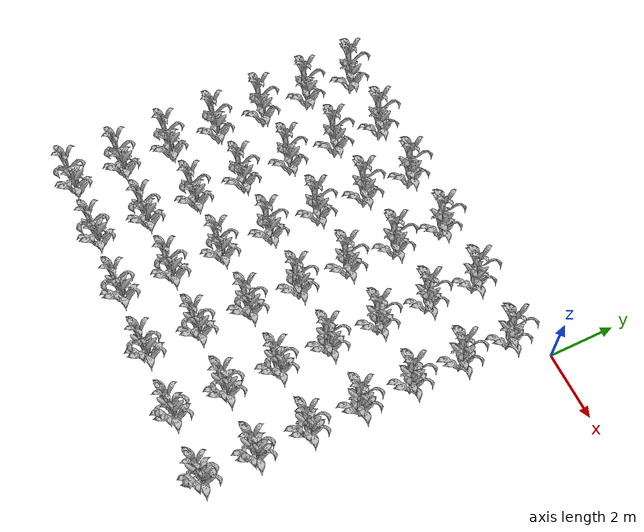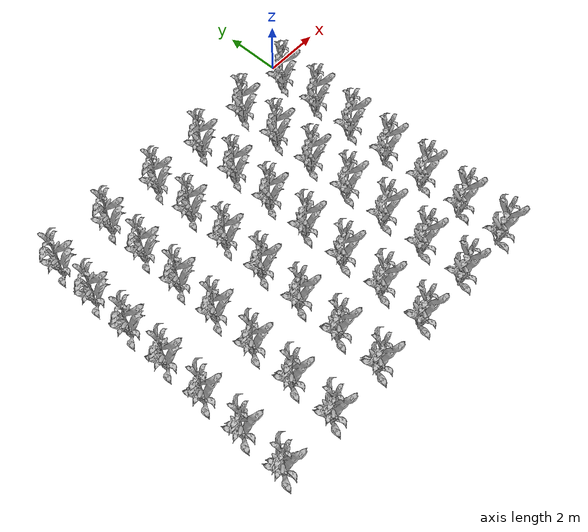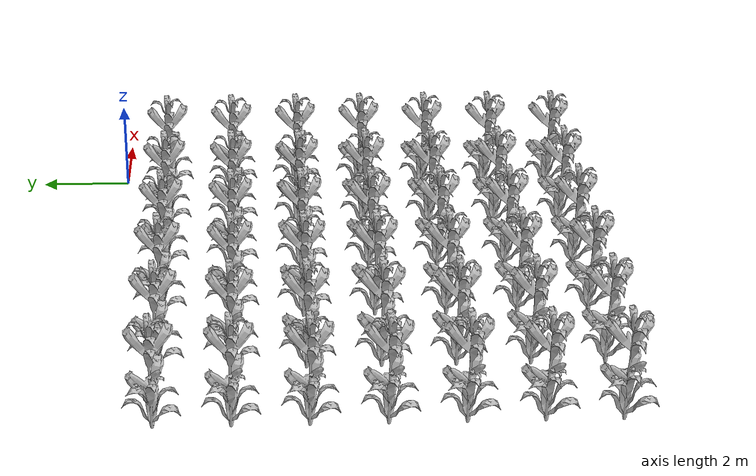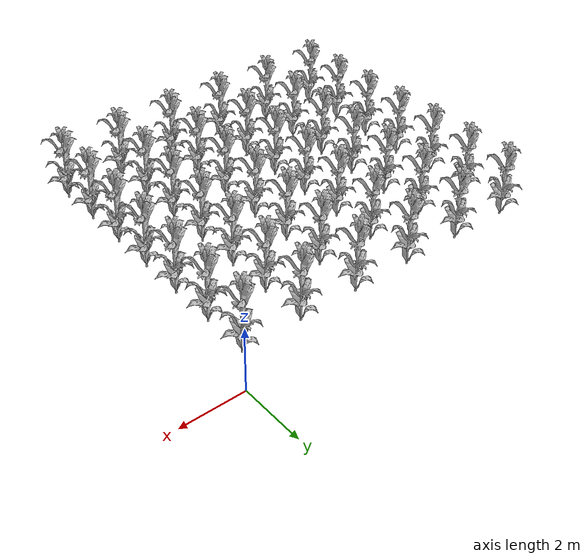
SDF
<sdf version="1.7">
 <world name="default">
  <model name="corn_-10.5_-10.0">
   <static>1</static>
   <link name="link">
    <inertial>
     <mass>0.2</mass>
     <inertia>
      <ixx>0.166667</ixx>
      <ixy>0</ixy>
      <ixz>0</ixz>
      <iyy>0.166667</iyy>
      <iyz>0</iyz>
      <izz>0.166667</izz>
     </inertia>
    </inertial>
    <collision name="collision">
     <geometry><mesh><uri>model://corn_2/meshes/corn.dae</uri><scale>1 1 1</scale></mesh></geometry>
     <surface>
      <friction><ode><mu>0.0</mu><mu2>0.0</mu2></ode></friction>
      <contact><ode><kp>0.0</kp><kd>0.0</kd><max_vel>0.0</max_vel><min_depth>0.002</min_depth></ode></contact>
     </surface>
    </collision>
    <visual name="visual">
     <geometry><mesh><uri>model://corn_2/meshes/corn.dae</uri><scale>1 1 1</scale></mesh></geometry>
    </visual>
    <velocity_decay><linear>0</linear><angular>0</angular></velocity_decay>
   </link>
   <pose>-10.5 -10 0.15 0 -0 0</pose>
  </model>
  <model name="corn_-10.5_-8.5">
   <static>1</static>
   <link name="link">
    <inertial>
     <mass>0.2</mass>
     <inertia>
      <ixx>0.166667</ixx>
      <ixy>0</ixy>
      <ixz>0</ixz>
      <iyy>0.166667</iyy>
      <iyz>0</iyz>
      <izz>0.166667</izz>
     </inertia>
    </inertial>
    <collision name="collision">
     <geometry><mesh><uri>model://corn_2/meshes/corn.dae</uri><scale>1 1 1</scale></mesh></geometry>
     <surface>
      <friction><ode><mu>0.0</mu><mu2>0.0</mu2></ode></friction>
      <contact><ode><kp>0.0</kp><kd>0.0</kd><max_vel>0.0</max_vel><min_depth>0.002</min_depth></ode></contact>
     </surface>
    </collision>
    <visual name="visual">
     <geometry><mesh><uri>model://corn_2/meshes/corn.dae</uri><scale>1 1 1</scale></mesh></geometry>
    </visual>
    <velocity_decay><linear>0</linear><angular>0</angular></velocity_decay>
   </link>
   <pose>-10.5 -8.5 0.15 0 -0 0</pose>
  </model>
  <model name="corn_-10.5_-7.0">
   <static>1</static>
   <link name="link">
    <inertial>
     <mass>0.2</mass>
     <inertia>
      <ixx>0.166667</ixx>
      <ixy>0</ixy>
      <ixz>0</ixz>
      <iyy>0.166667</iyy>
      <iyz>0</iyz>
      <izz>0.166667</izz>
     </inertia>
    </inertial>
    <collision name="collision">
     <geometry><mesh><uri>model://corn_2/meshes/corn.dae</uri><scale>1 1 1</scale></mesh></geometry>
     <surface>
      <friction><ode><mu>0.0</mu><mu2>0.0</mu2></ode></friction>
      <contact><ode><kp>0.0</kp><kd>0.0</kd><max_vel>0.0</max_vel><min_depth>0.002</min_depth></ode></contact>
     </surface>
    </collision>
    <visual name="visual">
     <geometry><mesh><uri>model://corn_2/meshes/corn.dae</uri><scale>1 1 1</scale></mesh></geometry>
    </visual>
    <velocity_decay><linear>0</linear><angular>0</angular></velocity_decay>
   </link>
   <pose>-10.5 -7 0.15 0 -0 0</pose>
  </model>
  <model name="corn_-10.5_-5.5">
   <static>1</static>
   <link name="link">
    <inertial>
     <mass>0.2</mass>
     <inertia>
      <ixx>0.166667</ixx>
      <ixy>0</ixy>
      <ixz>0</ixz>
      <iyy>0.166667</iyy>
      <iyz>0</iyz>
      <izz>0.166667</izz>
     </inertia>
    </inertial>
    <collision name="collision">
     <geometry><mesh><uri>model://corn_2/meshes/corn.dae</uri><scale>1 1 1</scale></mesh></geometry>
     <surface>
      <friction><ode><mu>0.0</mu><mu2>0.0</mu2></ode></friction>
      <contact><ode><kp>0.0</kp><kd>0.0</kd><max_vel>0.0</max_vel><min_depth>0.002</min_depth></ode></contact>
     </surface>
    </collision>
    <visual name="visual">
     <geometry><mesh><uri>model://corn_2/meshes/corn.dae</uri><scale>1 1 1</scale></mesh></geometry>
    </visual>
    <velocity_decay><linear>0</linear><angular>0</angular></velocity_decay>
   </link>
   <pose>-10.5 -5.5 0.15 0 -0 0</pose>
  </model>
  <model name="corn_-10.5_-4.0">
   <static>1</static>
   <link name="link">
    <inertial>
     <mass>0.2</mass>
     <inertia>
      <ixx>0.166667</ixx>
      <ixy>0</ixy>
      <ixz>0</ixz>
      <iyy>0.166667</iyy>
      <iyz>0</iyz>
      <izz>0.166667</izz>
     </inertia>
    </inertial>
    <collision name="collision">
     <geometry><mesh><uri>model://corn_2/meshes/corn.dae</uri><scale>1 1 1</scale></mesh></geometry>
     <surface>
      <friction><ode><mu>0.0</mu><mu2>0.0</mu2></ode></friction>
      <contact><ode><kp>0.0</kp><kd>0.0</kd><max_vel>0.0</max_vel><min_depth>0.002</min_depth></ode></contact>
     </surface>
    </collision>
    <visual name="visual">
     <geometry><mesh><uri>model://corn_2/meshes/corn.dae</uri><scale>1 1 1</scale></mesh></geometry>
    </visual>
    <velocity_decay><linear>0</linear><angular>0</angular></velocity_decay>
   </link>
   <pose>-10.5 -4 0.15 0 -0 0</pose>
  </model>
  <model name="corn_-10.5_-2.5">
   <static>1</static>
   <link name="link">
    <inertial>
     <mass>0.2</mass>
     <inertia>
      <ixx>0.166667</ixx>
      <ixy>0</ixy>
      <ixz>0</ixz>
      <iyy>0.166667</iyy>
      <iyz>0</iyz>
      <izz>0.166667</izz>
     </inertia>
    </inertial>
    <collision name="collision">
     <geometry><mesh><uri>model://corn_2/meshes/corn.dae</uri><scale>1 1 1</scale></mesh></geometry>
     <surface>
      <friction><ode><mu>0.0</mu><mu2>0.0</mu2></ode></friction>
      <contact><ode><kp>0.0</kp><kd>0.0</kd><max_vel>0.0</max_vel><min_depth>0.002</min_depth></ode></contact>
     </surface>
    </collision>
    <visual name="visual">
     <geometry><mesh><uri>model://corn_2/meshes/corn.dae</uri><scale>1 1 1</scale></mesh></geometry>
    </visual>
    <velocity_decay><linear>0</linear><angular>0</angular></velocity_decay>
   </link>
   <pose>-10.5 -2.5 0.15 0 -0 0</pose>
  </model>
  <model name="corn_-10.5_-1.0">
   <static>1</static>
   <link name="link">
    <inertial>
     <mass>0.2</mass>
     <inertia>
      <ixx>0.166667</ixx>
      <ixy>0</ixy>
      <ixz>0</ixz>
      <iyy>0.166667</iyy>
      <iyz>0</iyz>
      <izz>0.166667</izz>
     </inertia>
    </inertial>
    <collision name="collision">
     <geometry><mesh><uri>model://corn_2/meshes/corn.dae</uri><scale>1 1 1</scale></mesh></geometry>
     <surface>
      <friction><ode><mu>0.0</mu><mu2>0.0</mu2></ode></friction>
      <contact><ode><kp>0.0</kp><kd>0.0</kd><max_vel>0.0</max_vel><min_depth>0.002</min_depth></ode></contact>
     </surface>
    </collision>
    <visual name="visual">
     <geometry><mesh><uri>model://corn_2/meshes/corn.dae</uri><scale>1 1 1</scale></mesh></geometry>
    </visual>
    <velocity_decay><linear>0</linear><angular>0</angular></velocity_decay>
   </link>
   <pose>-10.5 -1 0.15 0 -0 0</pose>
  </model>
  <model name="corn_-8.508_-10.0">
   <static>1</static>
   <link name="link">
    <inertial>
     <mass>0.2</mass>
     <inertia>
      <ixx>0.166667</ixx>
      <ixy>0</ixy>
      <ixz>0</ixz>
      <iyy>0.166667</iyy>
      <iyz>0</iyz>
      <izz>0.166667</izz>
     </inertia>
    </inertial>
    <collision name="collision">
     <geometry><mesh><uri>model://corn_2/meshes/corn.dae</uri><scale>1 1 1</scale></mesh></geometry>
     <surface>
      <friction><ode><mu>0.0</mu><mu2>0.0</mu2></ode></friction>
      <contact><ode><kp>0.0</kp><kd>0.0</kd><max_vel>0.0</max_vel><min_depth>0.002</min_depth></ode></contact>
     </surface>
    </collision>
    <visual name="visual">
     <geometry><mesh><uri>model://corn_2/meshes/corn.dae</uri><scale>1 1 1</scale></mesh></geometry>
    </visual>
    <velocity_decay><linear>0</linear><angular>0</angular></velocity_decay>
   </link>
   <pose>-8.508 -10 0.15 0 -0 0</pose>
  </model>
  <model name="corn_-8.508_-8.5">
   <static>1</static>
   <link name="link">
    <inertial>
     <mass>0.2</mass>
     <inertia>
      <ixx>0.166667</ixx>
      <ixy>0</ixy>
      <ixz>0</ixz>
      <iyy>0.166667</iyy>
      <iyz>0</iyz>
      <izz>0.166667</izz>
     </inertia>
    </inertial>
    <collision name="collision">
     <geometry><mesh><uri>model://corn_2/meshes/corn.dae</uri><scale>1 1 1</scale></mesh></geometry>
     <surface>
      <friction><ode><mu>0.0</mu><mu2>0.0</mu2></ode></friction>
      <contact><ode><kp>0.0</kp><kd>0.0</kd><max_vel>0.0</max_vel><min_depth>0.002</min_depth></ode></contact>
     </surface>
    </collision>
    <visual name="visual">
     <geometry><mesh><uri>model://corn_2/meshes/corn.dae</uri><scale>1 1 1</scale></mesh></geometry>
    </visual>
    <velocity_decay><linear>0</linear><angular>0</angular></velocity_decay>
   </link>
   <pose>-8.508 -8.5 0.15 0 -0 0</pose>
  </model>
  <model name="corn_-8.508_-7.0">
   <static>1</static>
   <link name="link">
    <inertial>
     <mass>0.2</mass>
     <inertia>
      <ixx>0.166667</ixx>
      <ixy>0</ixy>
      <ixz>0</ixz>
      <iyy>0.166667</iyy>
      <iyz>0</iyz>
      <izz>0.166667</izz>
     </inertia>
    </inertial>
    <collision name="collision">
     <geometry><mesh><uri>model://corn_2/meshes/corn.dae</uri><scale>1 1 1</scale></mesh></geometry>
     <surface>
      <friction><ode><mu>0.0</mu><mu2>0.0</mu2></ode></friction>
      <contact><ode><kp>0.0</kp><kd>0.0</kd><max_vel>0.0</max_vel><min_depth>0.002</min_depth></ode></contact>
     </surface>
    </collision>
    <visual name="visual">
     <geometry><mesh><uri>model://corn_2/meshes/corn.dae</uri><scale>1 1 1</scale></mesh></geometry>
    </visual>
    <velocity_decay><linear>0</linear><angular>0</angular></velocity_decay>
   </link>
   <pose>-8.508 -7 0.15 0 -0 0</pose>
  </model>
  <model name="corn_-8.508_-5.5">
   <static>1</static>
   <link name="link">
    <inertial>
     <mass>0.2</mass>
     <inertia>
      <ixx>0.166667</ixx>
      <ixy>0</ixy>
      <ixz>0</ixz>
      <iyy>0.166667</iyy>
      <iyz>0</iyz>
      <izz>0.166667</izz>
     </inertia>
    </inertial>
    <collision name="collision">
     <geometry><mesh><uri>model://corn_2/meshes/corn.dae</uri><scale>1 1 1</scale></mesh></geometry>
     <surface>
      <friction><ode><mu>0.0</mu><mu2>0.0</mu2></ode></friction>
      <contact><ode><kp>0.0</kp><kd>0.0</kd><max_vel>0.0</max_vel><min_depth>0.002</min_depth></ode></contact>
     </surface>
    </collision>
    <visual name="visual">
     <geometry><mesh><uri>model://corn_2/meshes/corn.dae</uri><scale>1 1 1</scale></mesh></geometry>
    </visual>
    <velocity_decay><linear>0</linear><angular>0</angular></velocity_decay>
   </link>
   <pose>-8.508 -5.5 0.15 0 -0 0</pose>
  </model>
  <model name="corn_-8.508_-4.0">
   <static>1</static>
   <link name="link">
    <inertial>
     <mass>0.2</mass>
     <inertia>
      <ixx>0.166667</ixx>
      <ixy>0</ixy>
      <ixz>0</ixz>
      <iyy>0.166667</iyy>
      <iyz>0</iyz>
      <izz>0.166667</izz>
     </inertia>
    </inertial>
    <collision name="collision">
     <geometry><mesh><uri>model://corn_2/meshes/corn.dae</uri><scale>1 1 1</scale></mesh></geometry>
     <surface>
      <friction><ode><mu>0.0</mu><mu2>0.0</mu2></ode></friction>
      <contact><ode><kp>0.0</kp><kd>0.0</kd><max_vel>0.0</max_vel><min_depth>0.002</min_depth></ode></contact>
     </surface>
    </collision>
    <visual name="visual">
     <geometry><mesh><uri>model://corn_2/meshes/corn.dae</uri><scale>1 1 1</scale></mesh></geometry>
    </visual>
    <velocity_decay><linear>0</linear><angular>0</angular></velocity_decay>
   </link>
   <pose>-8.508 -4 0.15 0 -0 0</pose>
  </model>
  <model name="corn_-8.508_-2.5">
   <static>1</static>
   <link name="link">
    <inertial>
     <mass>0.2</mass>
     <inertia>
      <ixx>0.166667</ixx>
      <ixy>0</ixy>
      <ixz>0</ixz>
      <iyy>0.166667</iyy>
      <iyz>0</iyz>
      <izz>0.166667</izz>
     </inertia>
    </inertial>
    <collision name="collision">
     <geometry><mesh><uri>model://corn_2/meshes/corn.dae</uri><scale>1 1 1</scale></mesh></geometry>
     <surface>
      <friction><ode><mu>0.0</mu><mu2>0.0</mu2></ode></friction>
      <contact><ode><kp>0.0</kp><kd>0.0</kd><max_vel>0.0</max_vel><min_depth>0.002</min_depth></ode></contact>
     </surface>
    </collision>
    <visual name="visual">
     <geometry><mesh><uri>model://corn_2/meshes/corn.dae</uri><scale>1 1 1</scale></mesh></geometry>
    </visual>
    <velocity_decay><linear>0</linear><angular>0</angular></velocity_decay>
   </link>
   <pose>-8.508 -2.5 0.15 0 -0 0</pose>
  </model>
  <model name="corn_-8.508_-1.0">
   <static>1</static>
   <link name="link">
    <inertial>
     <mass>0.2</mass>
     <inertia>
      <ixx>0.166667</ixx>
      <ixy>0</ixy>
      <ixz>0</ixz>
      <iyy>0.166667</iyy>
      <iyz>0</iyz>
      <izz>0.166667</izz>
     </inertia>
    </inertial>
    <collision name="collision">
     <geometry><mesh><uri>model://corn_2/meshes/corn.dae</uri><scale>1 1 1</scale></mesh></geometry>
     <surface>
      <friction><ode><mu>0.0</mu><mu2>0.0</mu2></ode></friction>
      <contact><ode><kp>0.0</kp><kd>0.0</kd><max_vel>0.0</max_vel><min_depth>0.002</min_depth></ode></contact>
     </surface>
    </collision>
    <visual name="visual">
     <geometry><mesh><uri>model://corn_2/meshes/corn.dae</uri><scale>1 1 1</scale></mesh></geometry>
    </visual>
    <velocity_decay><linear>0</linear><angular>0</angular></velocity_decay>
   </link>
   <pose>-8.508 -1 0.15 0 -0 0</pose>
  </model>
  <model name="corn_-6.531936_-10.0">
   <static>1</static>
   <link name="link">
    <inertial>
     <mass>0.2</mass>
     <inertia>
      <ixx>0.166667</ixx>
      <ixy>0</ixy>
      <ixz>0</ixz>
      <iyy>0.166667</iyy>
      <iyz>0</iyz>
      <izz>0.166667</izz>
     </inertia>
    </inertial>
    <collision name="collision">
     <geometry><mesh><uri>model://corn_2/meshes/corn.dae</uri><scale>1 1 1</scale></mesh></geometry>
     <surface>
      <friction><ode><mu>0.0</mu><mu2>0.0</mu2></ode></friction>
      <contact><ode><kp>0.0</kp><kd>0.0</kd><max_vel>0.0</max_vel><min_depth>0.002</min_depth></ode></contact>
     </surface>
    </collision>
    <visual name="visual">
     <geometry><mesh><uri>model://corn_2/meshes/corn.dae</uri><scale>1 1 1</scale></mesh></geometry>
    </visual>
    <velocity_decay><linear>0</linear><angular>0</angular></velocity_decay>
   </link>
   <pose>-6.53194 -10 0.15 0 -0 0</pose>
  </model>
  <model name="corn_-6.531936_-8.5">
   <static>1</static>
   <link name="link">
    <inertial>
     <mass>0.2</mass>
     <inertia>
      <ixx>0.166667</ixx>
      <ixy>0</ixy>
      <ixz>0</ixz>
      <iyy>0.166667</iyy>
      <iyz>0</iyz>
      <izz>0.166667</izz>
     </inertia>
    </inertial>
    <collision name="collision">
     <geometry><mesh><uri>model://corn_2/meshes/corn.dae</uri><scale>1 1 1</scale></mesh></geometry>
     <surface>
      <friction><ode><mu>0.0</mu><mu2>0.0</mu2></ode></friction>
      <contact><ode><kp>0.0</kp><kd>0.0</kd><max_vel>0.0</max_vel><min_depth>0.002</min_depth></ode></contact>
     </surface>
    </collision>
    <visual name="visual">
     <geometry><mesh><uri>model://corn_2/meshes/corn.dae</uri><scale>1 1 1</scale></mesh></geometry>
    </visual>
    <velocity_decay><linear>0</linear><angular>0</angular></velocity_decay>
   </link>
   <pose>-6.53194 -8.5 0.15 0 -0 0</pose>
  </model>
  <model name="corn_-6.531936_-7.0">
   <static>1</static>
   <link name="link">
    <inertial>
     <mass>0.2</mass>
     <inertia>
      <ixx>0.166667</ixx>
      <ixy>0</ixy>
      <ixz>0</ixz>
      <iyy>0.166667</iyy>
      <iyz>0</iyz>
      <izz>0.166667</izz>
     </inertia>
    </inertial>
    <collision name="collision">
     <geometry><mesh><uri>model://corn_2/meshes/corn.dae</uri><scale>1 1 1</scale></mesh></geometry>
     <surface>
      <friction><ode><mu>0.0</mu><mu2>0.0</mu2></ode></friction>
      <contact><ode><kp>0.0</kp><kd>0.0</kd><max_vel>0.0</max_vel><min_depth>0.002</min_depth></ode></contact>
     </surface>
    </collision>
    <visual name="visual">
     <geometry><mesh><uri>model://corn_2/meshes/corn.dae</uri><scale>1 1 1</scale></mesh></geometry>
    </visual>
    <velocity_decay><linear>0</linear><angular>0</angular></velocity_decay>
   </link>
   <pose>-6.53194 -7 0.15 0 -0 0</pose>
  </model>
  <model name="corn_-6.531936_-5.5">
   <static>1</static>
   <link name="link">
    <inertial>
     <mass>0.2</mass>
     <inertia>
      <ixx>0.166667</ixx>
      <ixy>0</ixy>
      <ixz>0</ixz>
      <iyy>0.166667</iyy>
      <iyz>0</iyz>
      <izz>0.166667</izz>
     </inertia>
    </inertial>
    <collision name="collision">
     <geometry><mesh><uri>model://corn_2/meshes/corn.dae</uri><scale>1 1 1</scale></mesh></geometry>
     <surface>
      <friction><ode><mu>0.0</mu><mu2>0.0</mu2></ode></friction>
      <contact><ode><kp>0.0</kp><kd>0.0</kd><max_vel>0.0</max_vel><min_depth>0.002</min_depth></ode></contact>
     </surface>
    </collision>
    <visual name="visual">
     <geometry><mesh><uri>model://corn_2/meshes/corn.dae</uri><scale>1 1 1</scale></mesh></geometry>
    </visual>
    <velocity_decay><linear>0</linear><angular>0</angular></velocity_decay>
   </link>
   <pose>-6.53194 -5.5 0.15 0 -0 0</pose>
  </model>
  <model name="corn_-6.531936_-4.0">
   <static>1</static>
   <link name="link">
    <inertial>
     <mass>0.2</mass>
     <inertia>
      <ixx>0.166667</ixx>
      <ixy>0</ixy>
      <ixz>0</ixz>
      <iyy>0.166667</iyy>
      <iyz>0</iyz>
      <izz>0.166667</izz>
     </inertia>
    </inertial>
    <collision name="collision">
     <geometry><mesh><uri>model://corn_2/meshes/corn.dae</uri><scale>1 1 1</scale></mesh></geometry>
     <surface>
      <friction><ode><mu>0.0</mu><mu2>0.0</mu2></ode></friction>
      <contact><ode><kp>0.0</kp><kd>0.0</kd><max_vel>0.0</max_vel><min_depth>0.002</min_depth></ode></contact>
     </surface>
    </collision>
    <visual name="visual">
     <geometry><mesh><uri>model://corn_2/meshes/corn.dae</uri><scale>1 1 1</scale></mesh></geometry>
    </visual>
    <velocity_decay><linear>0</linear><angular>0</angular></velocity_decay>
   </link>
   <pose>-6.53194 -4 0.15 0 -0 0</pose>
  </model>
  <model name="corn_-6.531936_-2.5">
   <static>1</static>
   <link name="link">
    <inertial>
     <mass>0.2</mass>
     <inertia>
      <ixx>0.166667</ixx>
      <ixy>0</ixy>
      <ixz>0</ixz>
      <iyy>0.166667</iyy>
      <iyz>0</iyz>
      <izz>0.166667</izz>
     </inertia>
    </inertial>
    <collision name="collision">
     <geometry><mesh><uri>model://corn_2/meshes/corn.dae</uri><scale>1 1 1</scale></mesh></geometry>
     <surface>
      <friction><ode><mu>0.0</mu><mu2>0.0</mu2></ode></friction>
      <contact><ode><kp>0.0</kp><kd>0.0</kd><max_vel>0.0</max_vel><min_depth>0.002</min_depth></ode></contact>
     </surface>
    </collision>
    <visual name="visual">
     <geometry><mesh><uri>model://corn_2/meshes/corn.dae</uri><scale>1 1 1</scale></mesh></geometry>
    </visual>
    <velocity_decay><linear>0</linear><angular>0</angular></velocity_decay>
   </link>
   <pose>-6.53194 -2.5 0.15 0 -0 0</pose>
  </model>
  <model name="corn_-6.531936_-1.0">
   <static>1</static>
   <link name="link">
    <inertial>
     <mass>0.2</mass>
     <inertia>
      <ixx>0.166667</ixx>
      <ixy>0</ixy>
      <ixz>0</ixz>
      <iyy>0.166667</iyy>
      <iyz>0</iyz>
      <izz>0.166667</izz>
     </inertia>
    </inertial>
    <collision name="collision">
     <geometry><mesh><uri>model://corn_2/meshes/corn.dae</uri><scale>1 1 1</scale></mesh></geometry>
     <surface>
      <friction><ode><mu>0.0</mu><mu2>0.0</mu2></ode></friction>
      <contact><ode><kp>0.0</kp><kd>0.0</kd><max_vel>0.0</max_vel><min_depth>0.002</min_depth></ode></contact>
     </surface>
    </collision>
    <visual name="visual">
     <geometry><mesh><uri>model://corn_2/meshes/corn.dae</uri><scale>1 1 1</scale></mesh></geometry>
    </visual>
    <velocity_decay><linear>0</linear><angular>0</angular></velocity_decay>
   </link>
   <pose>-6.53194 -1 0.15 0 -0 0</pose>
  </model>
  <model name="corn_-4.5717123840000005_-10.0">
   <static>1</static>
   <link name="link">
    <inertial>
     <mass>0.2</mass>
     <inertia>
      <ixx>0.166667</ixx>
      <ixy>0</ixy>
      <ixz>0</ixz>
      <iyy>0.166667</iyy>
      <iyz>0</iyz>
      <izz>0.166667</izz>
     </inertia>
    </inertial>
    <collision name="collision">
     <geometry><mesh><uri>model://corn_2/meshes/corn.dae</uri><scale>1 1 1</scale></mesh></geometry>
     <surface>
      <friction><ode><mu>0.0</mu><mu2>0.0</mu2></ode></friction>
      <contact><ode><kp>0.0</kp><kd>0.0</kd><max_vel>0.0</max_vel><min_depth>0.002</min_depth></ode></contact>
     </surface>
    </collision>
    <visual name="visual">
     <geometry><mesh><uri>model://corn_2/meshes/corn.dae</uri><scale>1 1 1</scale></mesh></geometry>
    </visual>
    <velocity_decay><linear>0</linear><angular>0</angular></velocity_decay>
   </link>
   <pose>-4.57171 -10 0.15 0 -0 0</pose>
  </model>
  <model name="corn_-4.5717123840000005_-8.5">
   <static>1</static>
   <link name="link">
    <inertial>
     <mass>0.2</mass>
     <inertia>
      <ixx>0.166667</ixx>
      <ixy>0</ixy>
      <ixz>0</ixz>
      <iyy>0.166667</iyy>
      <iyz>0</iyz>
      <izz>0.166667</izz>
     </inertia>
    </inertial>
    <collision name="collision">
     <geometry><mesh><uri>model://corn_2/meshes/corn.dae</uri><scale>1 1 1</scale></mesh></geometry>
     <surface>
      <friction><ode><mu>0.0</mu><mu2>0.0</mu2></ode></friction>
      <contact><ode><kp>0.0</kp><kd>0.0</kd><max_vel>0.0</max_vel><min_depth>0.002</min_depth></ode></contact>
     </surface>
    </collision>
    <visual name="visual">
     <geometry><mesh><uri>model://corn_2/meshes/corn.dae</uri><scale>1 1 1</scale></mesh></geometry>
    </visual>
    <velocity_decay><linear>0</linear><angular>0</angular></velocity_decay>
   </link>
   <pose>-4.57171 -8.5 0.15 0 -0 0</pose>
  </model>
  <model name="corn_-4.5717123840000005_-7.0">
   <static>1</static>
   <link name="link">
    <inertial>
     <mass>0.2</mass>
     <inertia>
      <ixx>0.166667</ixx>
      <ixy>0</ixy>
      <ixz>0</ixz>
      <iyy>0.166667</iyy>
      <iyz>0</iyz>
      <izz>0.166667</izz>
     </inertia>
    </inertial>
    <collision name="collision">
     <geometry><mesh><uri>model://corn_2/meshes/corn.dae</uri><scale>1 1 1</scale></mesh></geometry>
     <surface>
      <friction><ode><mu>0.0</mu><mu2>0.0</mu2></ode></friction>
      <contact><ode><kp>0.0</kp><kd>0.0</kd><max_vel>0.0</max_vel><min_depth>0.002</min_depth></ode></contact>
     </surface>
    </collision>
    <visual name="visual">
     <geometry><mesh><uri>model://corn_2/meshes/corn.dae</uri><scale>1 1 1</scale></mesh></geometry>
    </visual>
    <velocity_decay><linear>0</linear><angular>0</angular></velocity_decay>
   </link>
   <pose>-4.57171 -7 0.15 0 -0 0</pose>
  </model>
  <model name="corn_-4.5717123840000005_-5.5">
   <static>1</static>
   <link name="link">
    <inertial>
     <mass>0.2</mass>
     <inertia>
      <ixx>0.166667</ixx>
      <ixy>0</ixy>
      <ixz>0</ixz>
      <iyy>0.166667</iyy>
      <iyz>0</iyz>
      <izz>0.166667</izz>
     </inertia>
    </inertial>
    <collision name="collision">
     <geometry><mesh><uri>model://corn_2/meshes/corn.dae</uri><scale>1 1 1</scale></mesh></geometry>
     <surface>
      <friction><ode><mu>0.0</mu><mu2>0.0</mu2></ode></friction>
      <contact><ode><kp>0.0</kp><kd>0.0</kd><max_vel>0.0</max_vel><min_depth>0.002</min_depth></ode></contact>
     </surface>
    </collision>
    <visual name="visual">
     <geometry><mesh><uri>model://corn_2/meshes/corn.dae</uri><scale>1 1 1</scale></mesh></geometry>
    </visual>
    <velocity_decay><linear>0</linear><angular>0</angular></velocity_decay>
   </link>
   <pose>-4.57171 -5.5 0.15 0 -0 0</pose>
  </model>
  <model name="corn_-4.5717123840000005_-4.0">
   <static>1</static>
   <link name="link">
    <inertial>
     <mass>0.2</mass>
     <inertia>
      <ixx>0.166667</ixx>
      <ixy>0</ixy>
      <ixz>0</ixz>
      <iyy>0.166667</iyy>
      <iyz>0</iyz>
      <izz>0.166667</izz>
     </inertia>
    </inertial>
    <collision name="collision">
     <geometry><mesh><uri>model://corn_2/meshes/corn.dae</uri><scale>1 1 1</scale></mesh></geometry>
     <surface>
      <friction><ode><mu>0.0</mu><mu2>0.0</mu2></ode></friction>
      <contact><ode><kp>0.0</kp><kd>0.0</kd><max_vel>0.0</max_vel><min_depth>0.002</min_depth></ode></contact>
     </surface>
    </collision>
    <visual name="visual">
     <geometry><mesh><uri>model://corn_2/meshes/corn.dae</uri><scale>1 1 1</scale></mesh></geometry>
    </visual>
    <velocity_decay><linear>0</linear><angular>0</angular></velocity_decay>
   </link>
   <pose>-4.57171 -4 0.15 0 -0 0</pose>
  </model>
  <model name="corn_-4.5717123840000005_-2.5">
   <static>1</static>
   <link name="link">
    <inertial>
     <mass>0.2</mass>
     <inertia>
      <ixx>0.166667</ixx>
      <ixy>0</ixy>
      <ixz>0</ixz>
      <iyy>0.166667</iyy>
      <iyz>0</iyz>
      <izz>0.166667</izz>
     </inertia>
    </inertial>
    <collision name="collision">
     <geometry><mesh><uri>model://corn_2/meshes/corn.dae</uri><scale>1 1 1</scale></mesh></geometry>
     <surface>
      <friction><ode><mu>0.0</mu><mu2>0.0</mu2></ode></friction>
      <contact><ode><kp>0.0</kp><kd>0.0</kd><max_vel>0.0</max_vel><min_depth>0.002</min_depth></ode></contact>
     </surface>
    </collision>
    <visual name="visual">
     <geometry><mesh><uri>model://corn_2/meshes/corn.dae</uri><scale>1 1 1</scale></mesh></geometry>
    </visual>
    <velocity_decay><linear>0</linear><angular>0</angular></velocity_decay>
   </link>
   <pose>-4.57171 -2.5 0.15 0 -0 0</pose>
  </model>
  <model name="corn_-4.5717123840000005_-1.0">
   <static>1</static>
   <link name="link">
    <inertial>
     <mass>0.2</mass>
     <inertia>
      <ixx>0.166667</ixx>
      <ixy>0</ixy>
      <ixz>0</ixz>
      <iyy>0.166667</iyy>
      <iyz>0</iyz>
      <izz>0.166667</izz>
     </inertia>
    </inertial>
    <collision name="collision">
     <geometry><mesh><uri>model://corn_2/meshes/corn.dae</uri><scale>1 1 1</scale></mesh></geometry>
     <surface>
      <friction><ode><mu>0.0</mu><mu2>0.0</mu2></ode></friction>
      <contact><ode><kp>0.0</kp><kd>0.0</kd><max_vel>0.0</max_vel><min_depth>0.002</min_depth></ode></contact>
     </surface>
    </collision>
    <visual name="visual">
     <geometry><mesh><uri>model://corn_2/meshes/corn.dae</uri><scale>1 1 1</scale></mesh></geometry>
    </visual>
    <velocity_decay><linear>0</linear><angular>0</angular></velocity_decay>
   </link>
   <pose>-4.57171 -1 0.15 0 -0 0</pose>
  </model>
  <model name="corn_-2.627234045952_-10.0">
   <static>1</static>
   <link name="link">
    <inertial>
     <mass>0.2</mass>
     <inertia>
      <ixx>0.166667</ixx>
      <ixy>0</ixy>
      <ixz>0</ixz>
      <iyy>0.166667</iyy>
      <iyz>0</iyz>
      <izz>0.166667</izz>
     </inertia>
    </inertial>
    <collision name="collision">
     <geometry><mesh><uri>model://corn_2/meshes/corn.dae</uri><scale>1 1 1</scale></mesh></geometry>
     <surface>
      <friction><ode><mu>0.0</mu><mu2>0.0</mu2></ode></friction>
      <contact><ode><kp>0.0</kp><kd>0.0</kd><max_vel>0.0</max_vel><min_depth>0.002</min_depth></ode></contact>
     </surface>
    </collision>
    <visual name="visual">
     <geometry><mesh><uri>model://corn_2/meshes/corn.dae</uri><scale>1 1 1</scale></mesh></geometry>
    </visual>
    <velocity_decay><linear>0</linear><angular>0</angular></velocity_decay>
   </link>
   <pose>-2.62723 -10 0.15 0 -0 0</pose>
  </model>
  <model name="corn_-2.627234045952_-8.5">
   <static>1</static>
   <link name="link">
    <inertial>
     <mass>0.2</mass>
     <inertia>
      <ixx>0.166667</ixx>
      <ixy>0</ixy>
      <ixz>0</ixz>
      <iyy>0.166667</iyy>
      <iyz>0</iyz>
      <izz>0.166667</izz>
     </inertia>
    </inertial>
    <collision name="collision">
     <geometry><mesh><uri>model://corn_2/meshes/corn.dae</uri><scale>1 1 1</scale></mesh></geometry>
     <surface>
      <friction><ode><mu>0.0</mu><mu2>0.0</mu2></ode></friction>
      <contact><ode><kp>0.0</kp><kd>0.0</kd><max_vel>0.0</max_vel><min_depth>0.002</min_depth></ode></contact>
     </surface>
    </collision>
    <visual name="visual">
     <geometry><mesh><uri>model://corn_2/meshes/corn.dae</uri><scale>1 1 1</scale></mesh></geometry>
    </visual>
    <velocity_decay><linear>0</linear><angular>0</angular></velocity_decay>
   </link>
   <pose>-2.62723 -8.5 0.15 0 -0 0</pose>
  </model>
  <model name="corn_-2.627234045952_-7.0">
   <static>1</static>
   <link name="link">
    <inertial>
     <mass>0.2</mass>
     <inertia>
      <ixx>0.166667</ixx>
      <ixy>0</ixy>
      <ixz>0</ixz>
      <iyy>0.166667</iyy>
      <iyz>0</iyz>
      <izz>0.166667</izz>
     </inertia>
    </inertial>
    <collision name="collision">
     <geometry><mesh><uri>model://corn_2/meshes/corn.dae</uri><scale>1 1 1</scale></mesh></geometry>
     <surface>
      <friction><ode><mu>0.0</mu><mu2>0.0</mu2></ode></friction>
      <contact><ode><kp>0.0</kp><kd>0.0</kd><max_vel>0.0</max_vel><min_depth>0.002</min_depth></ode></contact>
     </surface>
    </collision>
    <visual name="visual">
     <geometry><mesh><uri>model://corn_2/meshes/corn.dae</uri><scale>1 1 1</scale></mesh></geometry>
    </visual>
    <velocity_decay><linear>0</linear><angular>0</angular></velocity_decay>
   </link>
   <pose>-2.62723 -7 0.15 0 -0 0</pose>
  </model>
  <model name="corn_-2.627234045952_-5.5">
   <static>1</static>
   <link name="link">
    <inertial>
     <mass>0.2</mass>
     <inertia>
      <ixx>0.166667</ixx>
      <ixy>0</ixy>
      <ixz>0</ixz>
      <iyy>0.166667</iyy>
      <iyz>0</iyz>
      <izz>0.166667</izz>
     </inertia>
    </inertial>
    <collision name="collision">
     <geometry><mesh><uri>model://corn_2/meshes/corn.dae</uri><scale>1 1 1</scale></mesh></geometry>
     <surface>
      <friction><ode><mu>0.0</mu><mu2>0.0</mu2></ode></friction>
      <contact><ode><kp>0.0</kp><kd>0.0</kd><max_vel>0.0</max_vel><min_depth>0.002</min_depth></ode></contact>
     </surface>
    </collision>
    <visual name="visual">
     <geometry><mesh><uri>model://corn_2/meshes/corn.dae</uri><scale>1 1 1</scale></mesh></geometry>
    </visual>
    <velocity_decay><linear>0</linear><angular>0</angular></velocity_decay>
   </link>
   <pose>-2.62723 -5.5 0.15 0 -0 0</pose>
  </model>
  <model name="corn_-2.627234045952_-4.0">
   <static>1</static>
   <link name="link">
    <inertial>
     <mass>0.2</mass>
     <inertia>
      <ixx>0.166667</ixx>
      <ixy>0</ixy>
      <ixz>0</ixz>
      <iyy>0.166667</iyy>
      <iyz>0</iyz>
      <izz>0.166667</izz>
     </inertia>
    </inertial>
    <collision name="collision">
     <geometry><mesh><uri>model://corn_2/meshes/corn.dae</uri><scale>1 1 1</scale></mesh></geometry>
     <surface>
      <friction><ode><mu>0.0</mu><mu2>0.0</mu2></ode></friction>
      <contact><ode><kp>0.0</kp><kd>0.0</kd><max_vel>0.0</max_vel><min_depth>0.002</min_depth></ode></contact>
     </surface>
    </collision>
    <visual name="visual">
     <geometry><mesh><uri>model://corn_2/meshes/corn.dae</uri><scale>1 1 1</scale></mesh></geometry>
    </visual>
    <velocity_decay><linear>0</linear><angular>0</angular></velocity_decay>
   </link>
   <pose>-2.62723 -4 0.15 0 -0 0</pose>
  </model>
  <model name="corn_-2.627234045952_-2.5">
   <static>1</static>
   <link name="link">
    <inertial>
     <mass>0.2</mass>
     <inertia>
      <ixx>0.166667</ixx>
      <ixy>0</ixy>
      <ixz>0</ixz>
      <iyy>0.166667</iyy>
      <iyz>0</iyz>
      <izz>0.166667</izz>
     </inertia>
    </inertial>
    <collision name="collision">
     <geometry><mesh><uri>model://corn_2/meshes/corn.dae</uri><scale>1 1 1</scale></mesh></geometry>
     <surface>
      <friction><ode><mu>0.0</mu><mu2>0.0</mu2></ode></friction>
      <contact><ode><kp>0.0</kp><kd>0.0</kd><max_vel>0.0</max_vel><min_depth>0.002</min_depth></ode></contact>
     </surface>
    </collision>
    <visual name="visual">
     <geometry><mesh><uri>model://corn_2/meshes/corn.dae</uri><scale>1 1 1</scale></mesh></geometry>
    </visual>
    <velocity_decay><linear>0</linear><angular>0</angular></velocity_decay>
   </link>
   <pose>-2.62723 -2.5 0.15 0 -0 0</pose>
  </model>
  <model name="corn_-2.627234045952_-1.0">
   <static>1</static>
   <link name="link">
    <inertial>
     <mass>0.2</mass>
     <inertia>
      <ixx>0.166667</ixx>
      <ixy>0</ixy>
      <ixz>0</ixz>
      <iyy>0.166667</iyy>
      <iyz>0</iyz>
      <izz>0.166667</izz>
     </inertia>
    </inertial>
    <collision name="collision">
     <geometry><mesh><uri>model://corn_2/meshes/corn.dae</uri><scale>1 1 1</scale></mesh></geometry>
     <surface>
      <friction><ode><mu>0.0</mu><mu2>0.0</mu2></ode></friction>
      <contact><ode><kp>0.0</kp><kd>0.0</kd><max_vel>0.0</max_vel><min_depth>0.002</min_depth></ode></contact>
     </surface>
    </collision>
    <visual name="visual">
     <geometry><mesh><uri>model://corn_2/meshes/corn.dae</uri><scale>1 1 1</scale></mesh></geometry>
    </visual>
    <velocity_decay><linear>0</linear><angular>0</angular></velocity_decay>
   </link>
   <pose>-2.62723 -1 0.15 0 -0 0</pose>
  </model>
  <model name="corn_-0.6984063872102411_-10.0">
   <static>1</static>
   <link name="link">
    <inertial>
     <mass>0.2</mass>
     <inertia>
      <ixx>0.166667</ixx>
      <ixy>0</ixy>
      <ixz>0</ixz>
      <iyy>0.166667</iyy>
      <iyz>0</iyz>
      <izz>0.166667</izz>
     </inertia>
    </inertial>
    <collision name="collision">
     <geometry><mesh><uri>model://corn_2/meshes/corn.dae</uri><scale>1 1 1</scale></mesh></geometry>
     <surface>
      <friction><ode><mu>0.0</mu><mu2>0.0</mu2></ode></friction>
      <contact><ode><kp>0.0</kp><kd>0.0</kd><max_vel>0.0</max_vel><min_depth>0.002</min_depth></ode></contact>
     </surface>
    </collision>
    <visual name="visual">
     <geometry><mesh><uri>model://corn_2/meshes/corn.dae</uri><scale>1 1 1</scale></mesh></geometry>
    </visual>
    <velocity_decay><linear>0</linear><angular>0</angular></velocity_decay>
   </link>
   <pose>-0.698406 -10 0.15 0 -0 0</pose>
  </model>
  <model name="corn_-0.6984063872102411_-8.5">
   <static>1</static>
   <link name="link">
    <inertial>
     <mass>0.2</mass>
     <inertia>
      <ixx>0.166667</ixx>
      <ixy>0</ixy>
      <ixz>0</ixz>
      <iyy>0.166667</iyy>
      <iyz>0</iyz>
      <izz>0.166667</izz>
     </inertia>
    </inertial>
    <collision name="collision">
     <geometry><mesh><uri>model://corn_2/meshes/corn.dae</uri><scale>1 1 1</scale></mesh></geometry>
     <surface>
      <friction><ode><mu>0.0</mu><mu2>0.0</mu2></ode></friction>
      <contact><ode><kp>0.0</kp><kd>0.0</kd><max_vel>0.0</max_vel><min_depth>0.002</min_depth></ode></contact>
     </surface>
    </collision>
    <visual name="visual">
     <geometry><mesh><uri>model://corn_2/meshes/corn.dae</uri><scale>1 1 1</scale></mesh></geometry>
    </visual>
    <velocity_decay><linear>0</linear><angular>0</angular></velocity_decay>
   </link>
   <pose>-0.698406 -8.5 0.15 0 -0 0</pose>
  </model>
  <model name="corn_-0.6984063872102411_-7.0">
   <static>1</static>
   <link name="link">
    <inertial>
     <mass>0.2</mass>
     <inertia>
      <ixx>0.166667</ixx>
      <ixy>0</ixy>
      <ixz>0</ixz>
      <iyy>0.166667</iyy>
      <iyz>0</iyz>
      <izz>0.166667</izz>
     </inertia>
    </inertial>
    <collision name="collision">
     <geometry><mesh><uri>model://corn_2/meshes/corn.dae</uri><scale>1 1 1</scale></mesh></geometry>
     <surface>
      <friction><ode><mu>0.0</mu><mu2>0.0</mu2></ode></friction>
      <contact><ode><kp>0.0</kp><kd>0.0</kd><max_vel>0.0</max_vel><min_depth>0.002</min_depth></ode></contact>
     </surface>
    </collision>
    <visual name="visual">
     <geometry><mesh><uri>model://corn_2/meshes/corn.dae</uri><scale>1 1 1</scale></mesh></geometry>
    </visual>
    <velocity_decay><linear>0</linear><angular>0</angular></velocity_decay>
   </link>
   <pose>-0.698406 -7 0.15 0 -0 0</pose>
  </model>
  <model name="corn_-0.6984063872102411_-5.5">
   <static>1</static>
   <link name="link">
    <inertial>
     <mass>0.2</mass>
     <inertia>
      <ixx>0.166667</ixx>
      <ixy>0</ixy>
      <ixz>0</ixz>
      <iyy>0.166667</iyy>
      <iyz>0</iyz>
      <izz>0.166667</izz>
     </inertia>
    </inertial>
    <collision name="collision">
     <geometry><mesh><uri>model://corn_2/meshes/corn.dae</uri><scale>1 1 1</scale></mesh></geometry>
     <surface>
      <friction><ode><mu>0.0</mu><mu2>0.0</mu2></ode></friction>
      <contact><ode><kp>0.0</kp><kd>0.0</kd><max_vel>0.0</max_vel><min_depth>0.002</min_depth></ode></contact>
     </surface>
    </collision>
    <visual name="visual">
     <geometry><mesh><uri>model://corn_2/meshes/corn.dae</uri><scale>1 1 1</scale></mesh></geometry>
    </visual>
    <velocity_decay><linear>0</linear><angular>0</angular></velocity_decay>
   </link>
   <pose>-0.698406 -5.5 0.15 0 -0 0</pose>
  </model>
  <model name="corn_-0.6984063872102411_-4.0">
   <static>1</static>
   <link name="link">
    <inertial>
     <mass>0.2</mass>
     <inertia>
      <ixx>0.166667</ixx>
      <ixy>0</ixy>
      <ixz>0</ixz>
      <iyy>0.166667</iyy>
      <iyz>0</iyz>
      <izz>0.166667</izz>
     </inertia>
    </inertial>
    <collision name="collision">
     <geometry><mesh><uri>model://corn_2/meshes/corn.dae</uri><scale>1 1 1</scale></mesh></geometry>
     <surface>
      <friction><ode><mu>0.0</mu><mu2>0.0</mu2></ode></friction>
      <contact><ode><kp>0.0</kp><kd>0.0</kd><max_vel>0.0</max_vel><min_depth>0.002</min_depth></ode></contact>
     </surface>
    </collision>
    <visual name="visual">
     <geometry><mesh><uri>model://corn_2/meshes/corn.dae</uri><scale>1 1 1</scale></mesh></geometry>
    </visual>
    <velocity_decay><linear>0</linear><angular>0</angular></velocity_decay>
   </link>
   <pose>-0.698406 -4 0.15 0 -0 0</pose>
  </model>
  <model name="corn_-0.6984063872102411_-2.5">
   <static>1</static>
   <link name="link">
    <inertial>
     <mass>0.2</mass>
     <inertia>
      <ixx>0.166667</ixx>
      <ixy>0</ixy>
      <ixz>0</ixz>
      <iyy>0.166667</iyy>
      <iyz>0</iyz>
      <izz>0.166667</izz>
     </inertia>
    </inertial>
    <collision name="collision">
     <geometry><mesh><uri>model://corn_2/meshes/corn.dae</uri><scale>1 1 1</scale></mesh></geometry>
     <surface>
      <friction><ode><mu>0.0</mu><mu2>0.0</mu2></ode></friction>
      <contact><ode><kp>0.0</kp><kd>0.0</kd><max_vel>0.0</max_vel><min_depth>0.002</min_depth></ode></contact>
     </surface>
    </collision>
    <visual name="visual">
     <geometry><mesh><uri>model://corn_2/meshes/corn.dae</uri><scale>1 1 1</scale></mesh></geometry>
    </visual>
    <velocity_decay><linear>0</linear><angular>0</angular></velocity_decay>
   </link>
   <pose>-0.698406 -2.5 0.15 0 -0 0</pose>
  </model>
  <model name="corn_-0.6984063872102411_-1.0">
   <static>1</static>
   <link name="link">
    <inertial>
     <mass>0.2</mass>
     <inertia>
      <ixx>0.166667</ixx>
      <ixy>0</ixy>
      <ixz>0</ixz>
      <iyy>0.166667</iyy>
      <iyz>0</iyz>
      <izz>0.166667</izz>
     </inertia>
    </inertial>
    <collision name="collision">
     <geometry><mesh><uri>model://corn_2/meshes/corn.dae</uri><scale>1 1 1</scale></mesh></geometry>
     <surface>
      <friction><ode><mu>0.0</mu><mu2>0.0</mu2></ode></friction>
      <contact><ode><kp>0.0</kp><kd>0.0</kd><max_vel>0.0</max_vel><min_depth>0.002</min_depth></ode></contact>
     </surface>
    </collision>
    <visual name="visual">
     <geometry><mesh><uri>model://corn_2/meshes/corn.dae</uri><scale>1 1 1</scale></mesh></geometry>
    </visual>
    <velocity_decay><linear>0</linear><angular>0</angular></velocity_decay>
   </link>
   <pose>-0.698406 -1 0.15 0 -0 0</pose>
  </model>
 </world>
</sdf>
